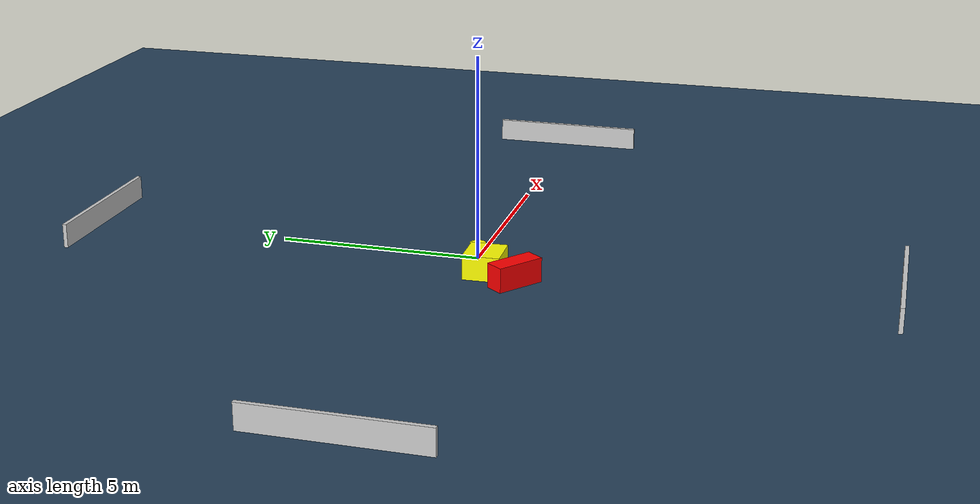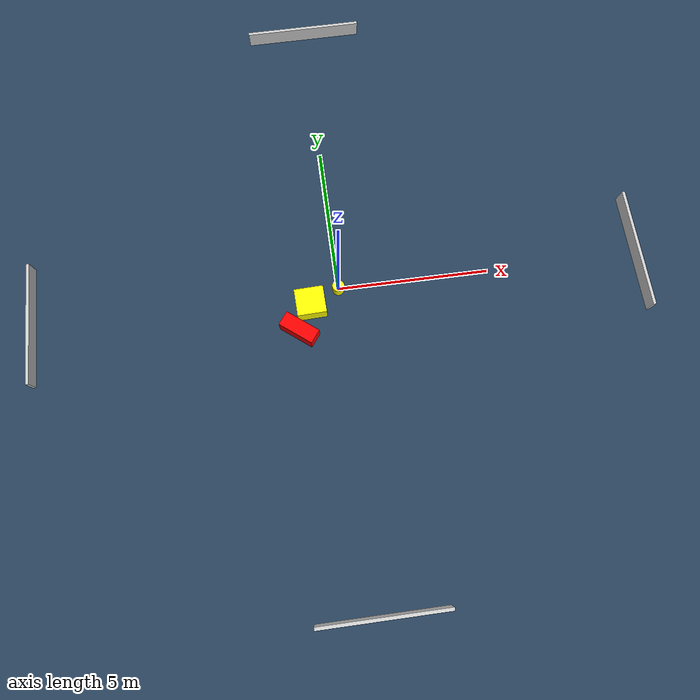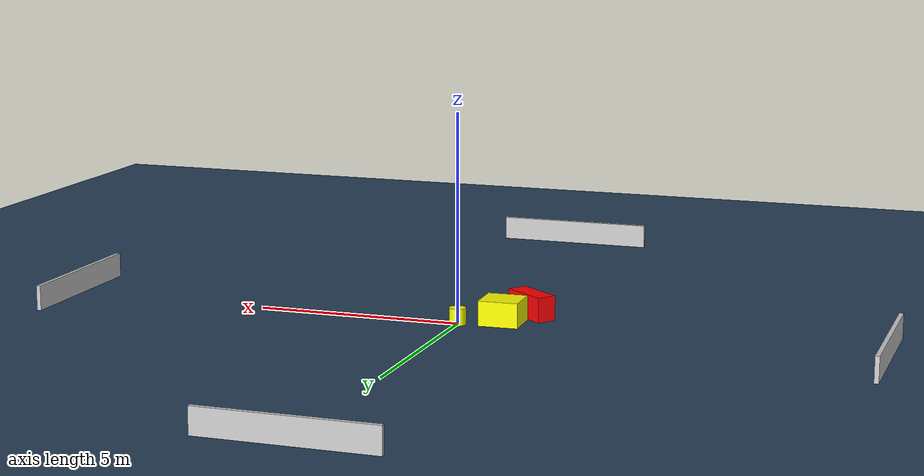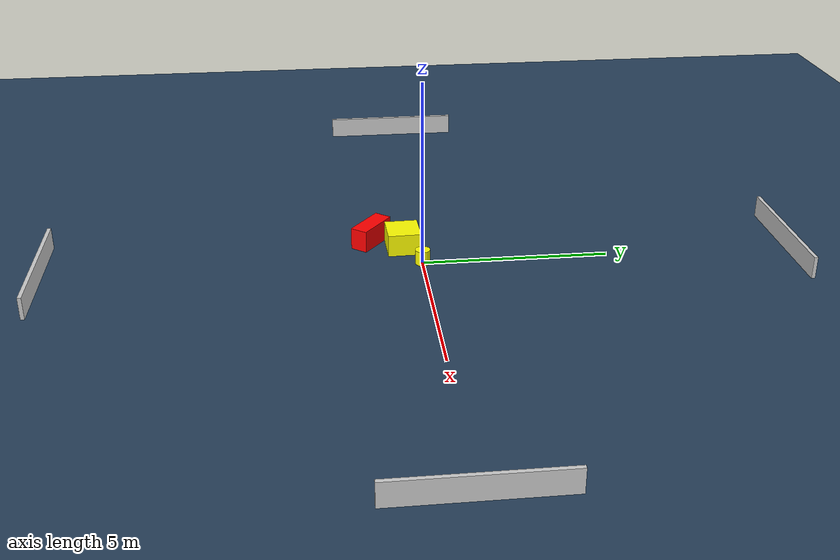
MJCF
<?xml version="1.0" ?>
<mujoco model="generated_environment">
  <option timestep="0.01" integrator="RK4" cone="elliptic"/>
  <default>
    <geom density="1"/>
  </default>
  <asset>
    <texture builtin="gradient" height="3072" name="skybox" rgb1="0.3 0.5 0.7" rgb2="0 0 0" type="skybox" width="512"/>
    <texture builtin="checker" height="300" name="groundplane" rgb1="0.2 0.3 0.4" rgb2="0.1 0.2 0.3" type="2d" width="300"/>
    <material name="groundplane" reflectance="0.2" texrepeat="5 5" texture="groundplane"/>
  </asset>
  <worldbody>
    <light dir="0 0 -1" directional="true" pos="0 0 1.5"/>
    <geom condim="3" friction="0.5 0.005 0.001" material="groundplane" name="floor" pos="0 0 0" size="0 0 0.05" type="plane"/>
    <body name="walls">
      <geom name="wall_1" condim="4" pos="-10.0 0.0 0.3" rgba="0.800000011920929 0.800000011920929 0.800000011920929 1.0" size="0.05 2.0 0.3" type="box"/>
      <geom name="wall_2" condim="4" pos="10.0 0.0 0.3" rgba="0.800000011920929 0.800000011920929 0.800000011920929 1.0" size="0.05 2.0 0.3" type="box"/>
      <geom name="wall_3" condim="4" pos="0.0 -10.0 0.3" rgba="0.800000011920929 0.800000011920929 0.800000011920929 1.0" size="2.0 0.05 0.3" type="box"/>
      <geom name="wall_4" condim="4" pos="0.0 10.0 0.3" rgba="0.800000011920929 0.800000011920929 0.800000011920929 1.0" size="2.0 0.05 0.3" type="box"/>
    </body>
    <body name="robot">
      <joint name="joint_x" type="slide" pos="0 0 0" axis="1 0 0"/>
      <joint name="joint_y" type="slide" pos="0 0 0" axis="0 1 0"/>
      <geom name="robot" type="cylinder" pos="0.0 0.0 0.2" size="0.2 0.2 0.0" mass="5.0" friction="1.0 0.005 0.0001" condim="4" rgba="1.0 1.0 0.0 1.0"/>
    </body>
    <body name="obstacle_1_movable">
      <geom name="obstacle_1_movable" condim="4" pos="-0.9708787054563975 -0.44158870310253423 0.3" euler="0 0 91.69867663192794" friction="0.0 0.005 0.001" rgba="1.0 1.0 0.0 1.0" size="0.44692165245945314 0.47784360047457064 0.3" type="box" mass="0.1"/>
      <joint type="free"/>
    </body>
    <body name="obstacle_2_static">
      <geom name="obstacle_2_static" condim="4" pos="-1.4274581794178098 -1.2746780035176777 0.3" euler="0 0 142.19148854579828" friction="0.0 0.005 0.001" rgba="1.0 0.0 0.0 1.0" size="0.607014231426797 0.2431319583750346 0.3" type="box"/>
    </body>
  </worldbody>
  <actuator>
    <motor name="actuator_x" joint="joint_x" gear="1" ctrlrange="-1 1"/>
    <motor name="actuator_y" joint="joint_y" gear="1" ctrlrange="-1 1"/>
  </actuator>
</mujoco>
